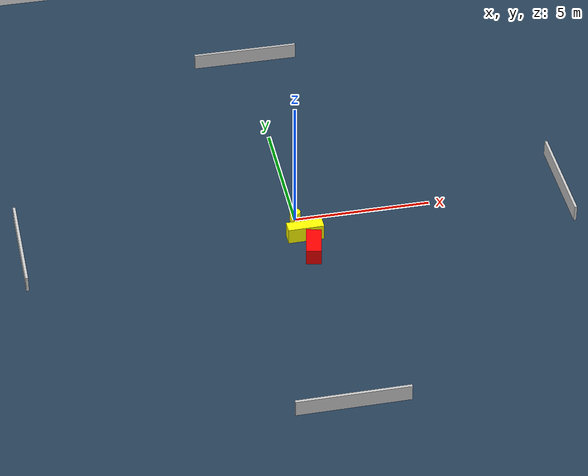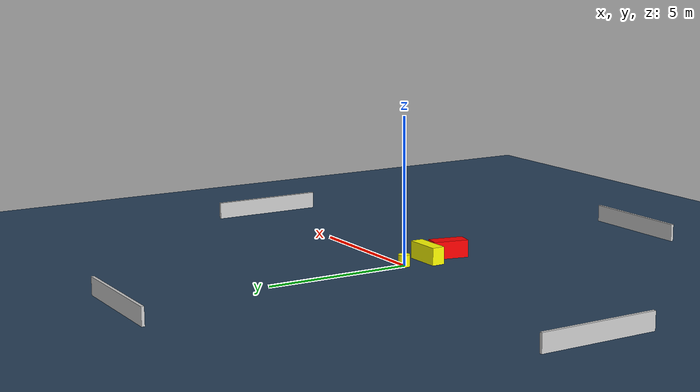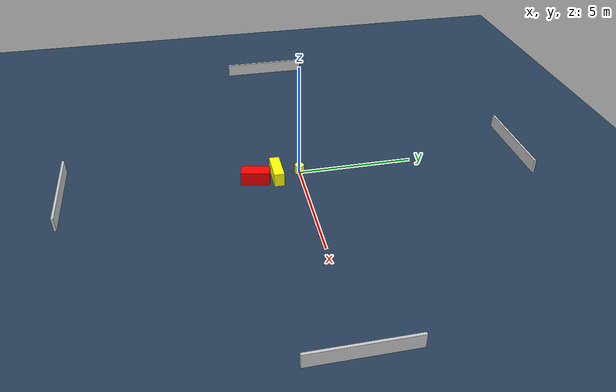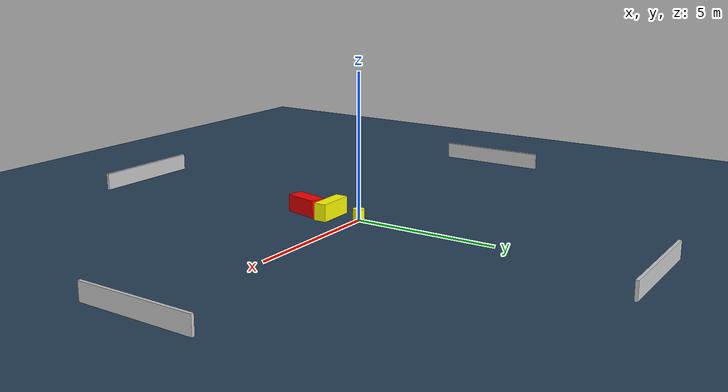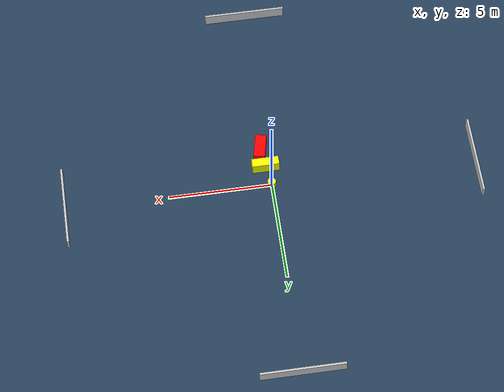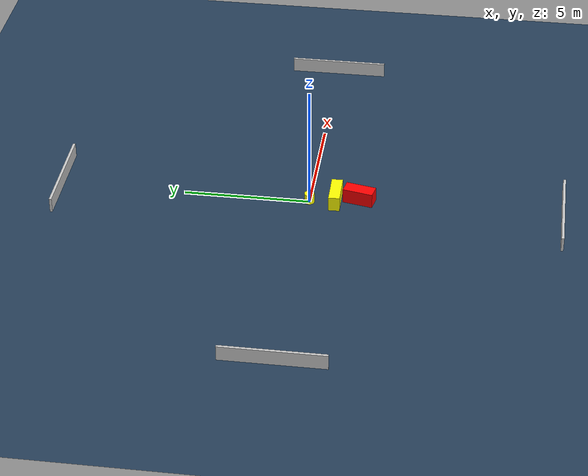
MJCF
<?xml version="1.0" ?>
<mujoco model="generated_environment">
  <option timestep="0.01" integrator="RK4" cone="elliptic"/>
  <default>
    <geom density="1"/>
  </default>
  <asset>
    <texture builtin="gradient" height="3072" name="skybox" rgb1="0.3 0.5 0.7" rgb2="0 0 0" type="skybox" width="512"/>
    <texture builtin="checker" height="300" name="groundplane" rgb1="0.2 0.3 0.4" rgb2="0.1 0.2 0.3" type="2d" width="300"/>
    <material name="groundplane" reflectance="0.2" texrepeat="5 5" texture="groundplane"/>
  </asset>
  <worldbody>
    <light dir="0 0 -1" directional="true" pos="0 0 1.5"/>
    <geom condim="3" friction="0.5 0.005 0.001" material="groundplane" name="floor" pos="0 0 0" size="0 0 0.05" type="plane"/>
    <body name="walls">
      <geom name="wall_1" condim="4" pos="-10.0 0.0 0.3" rgba="0.800000011920929 0.800000011920929 0.800000011920929 1.0" size="0.05 2.0 0.3" type="box"/>
      <geom name="wall_2" condim="4" pos="10.0 0.0 0.3" rgba="0.800000011920929 0.800000011920929 0.800000011920929 1.0" size="0.05 2.0 0.3" type="box"/>
      <geom name="wall_3" condim="4" pos="0.0 -10.0 0.3" rgba="0.800000011920929 0.800000011920929 0.800000011920929 1.0" size="2.0 0.05 0.3" type="box"/>
      <geom name="wall_4" condim="4" pos="0.0 10.0 0.3" rgba="0.800000011920929 0.800000011920929 0.800000011920929 1.0" size="2.0 0.05 0.3" type="box"/>
    </body>
    <body name="robot">
      <joint name="joint_x" type="slide" pos="0 0 0" axis="1 0 0"/>
      <joint name="joint_y" type="slide" pos="0 0 0" axis="0 1 0"/>
      <geom name="robot" type="cylinder" pos="0.0 0.0 0.2" size="0.2 0.2 0.0" mass="5.0" friction="1.0 0.005 0.0001" condim="4" rgba="1.0 1.0 0.0 1.0"/>
    </body>
    <body name="obstacle_1_movable">
      <geom name="obstacle_1_movable" condim="4" pos="0.16964688708885545 -1.0261328743663127 0.3" euler="0 0 90.64727725055548" friction="0.0 0.005 0.001" rgba="1.0 1.0 0.0 1.0" size="0.22252300421767623 0.6578221024291986 0.3" type="box" mass="0.1"/>
      <joint type="free"/>
    </body>
    <body name="obstacle_2_static">
      <geom name="obstacle_2_static" condim="4" pos="0.29683369942265997 -1.9591203169564428 0.3" euler="0 0 168.01299417371982" friction="0.0 0.005 0.001" rgba="1.0 0.0 0.0 1.0" size="0.27344045802475 0.60731483191262 0.3" type="box"/>
    </body>
  </worldbody>
  <actuator>
    <motor name="actuator_x" joint="joint_x" gear="1" ctrlrange="-1 1"/>
    <motor name="actuator_y" joint="joint_y" gear="1" ctrlrange="-1 1"/>
  </actuator>
</mujoco>
